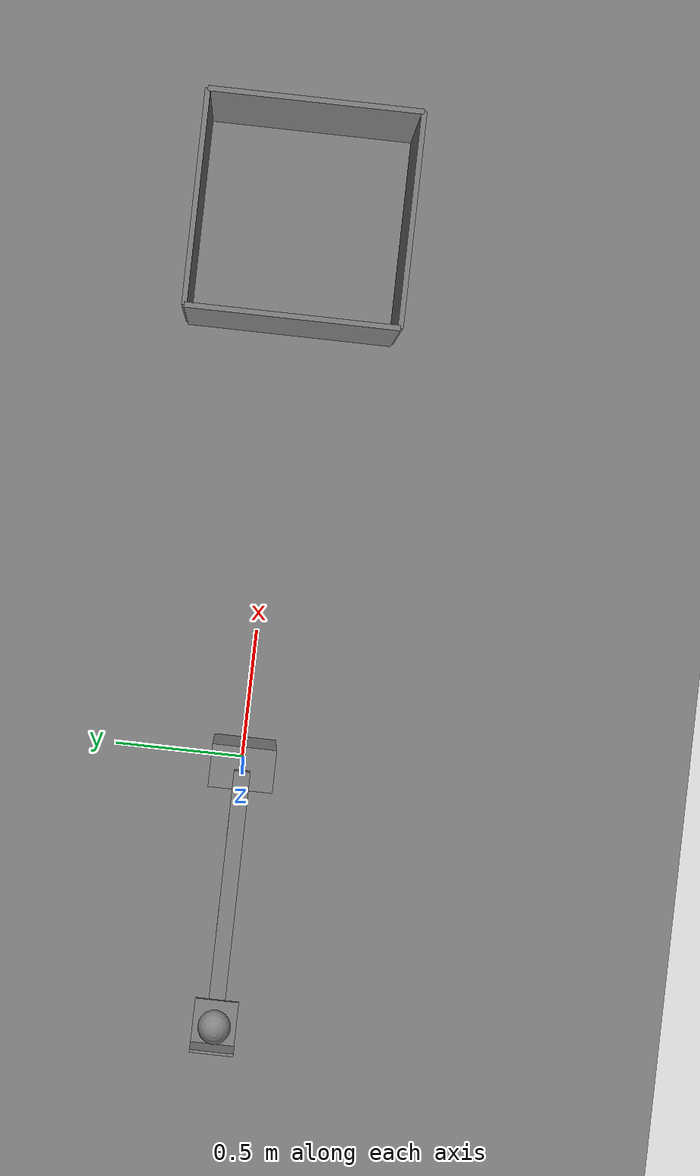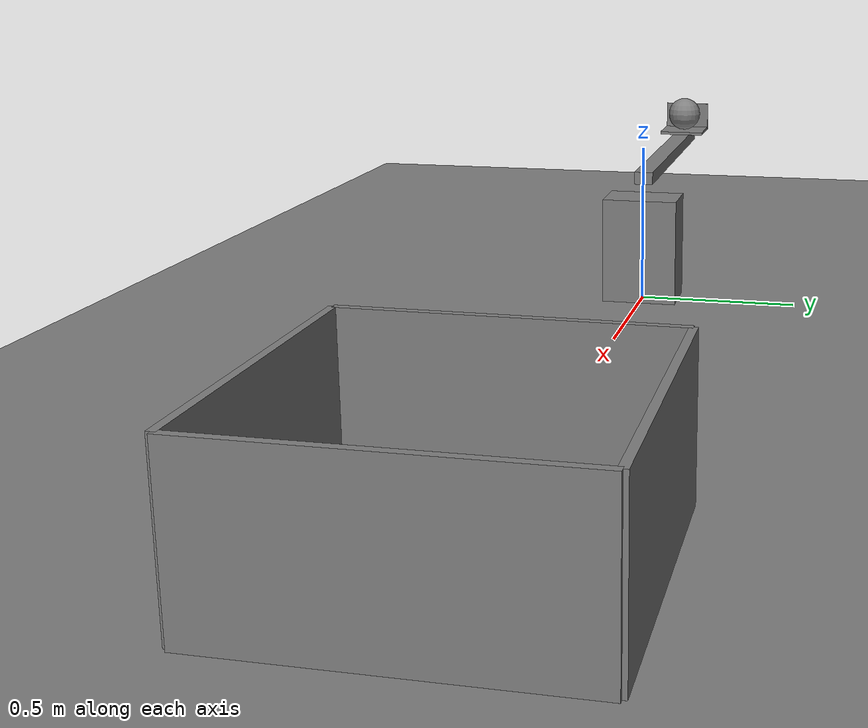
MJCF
<mujoco model="catapult_fixture">
  <option timestep="0.002"/>
  <worldbody>
    <geom name="floor" type="plane" size="8 8 0.1"/>
    <geom name="catapult_base" type="box" pos="0 0 0.170" size="0.08 0.12 0.170"/>
    <body name="catapult_arm" pos="0 0 0.4">
      <joint name="catapult_hinge" type="hinge" axis="0 1 0" limited="true" range="0 45" stiffness="3.0" springref="150" damping="0.05" armature="0.01" solreflimit="0.004 1" solimplimit="0.99 0.99 0.001"/>
      <geom name="catapult_beam" type="box" pos="-0.500 0 0" size="0.500 0.03 0.02" mass="0.3"/>
      <geom name="catapult_cup_floor" type="box" pos="-0.920 0 0.025" size="0.08 0.08 0.005" mass="0.02"/>
      <geom name="catapult_cup_back" type="box" pos="-1.005 0 0.07" size="0.005 0.08 0.05" mass="0.01"/>
    </body>
    <body name="ball" pos="-0.920 0 0.490">
      <freejoint/>
      <geom name="ball" type="sphere" size="0.06" mass="0.15" condim="6" friction="0.8 0.01 0.004" solref="0.01 1"/>
    </body>
    <body name="bucket" pos="2.080 0 0">
      <geom name="bucket_base" type="box" pos="0 0 0.01" size="0.4 0.4 0.01"/>
      <geom name="bucket_near" type="box" pos="-0.4 0 0.2" size="0.01 0.4 0.2"/>
      <geom name="bucket_far" type="box" pos="0.4 0 0.2" size="0.01 0.4 0.2"/>
      <geom name="bucket_left" type="box" pos="0 0.4 0.2" size="0.4 0.01 0.2"/>
      <geom name="bucket_right" type="box" pos="0 -0.4 0.2" size="0.4 0.01 0.2"/>
    </body>
  </worldbody>
  <keyframe>
    <key name="start" qpos="0 -0.920 0 0.490 1 0 0 0" qvel="0 0 0 0 0 0 0"/>
  </keyframe>
</mujoco>
